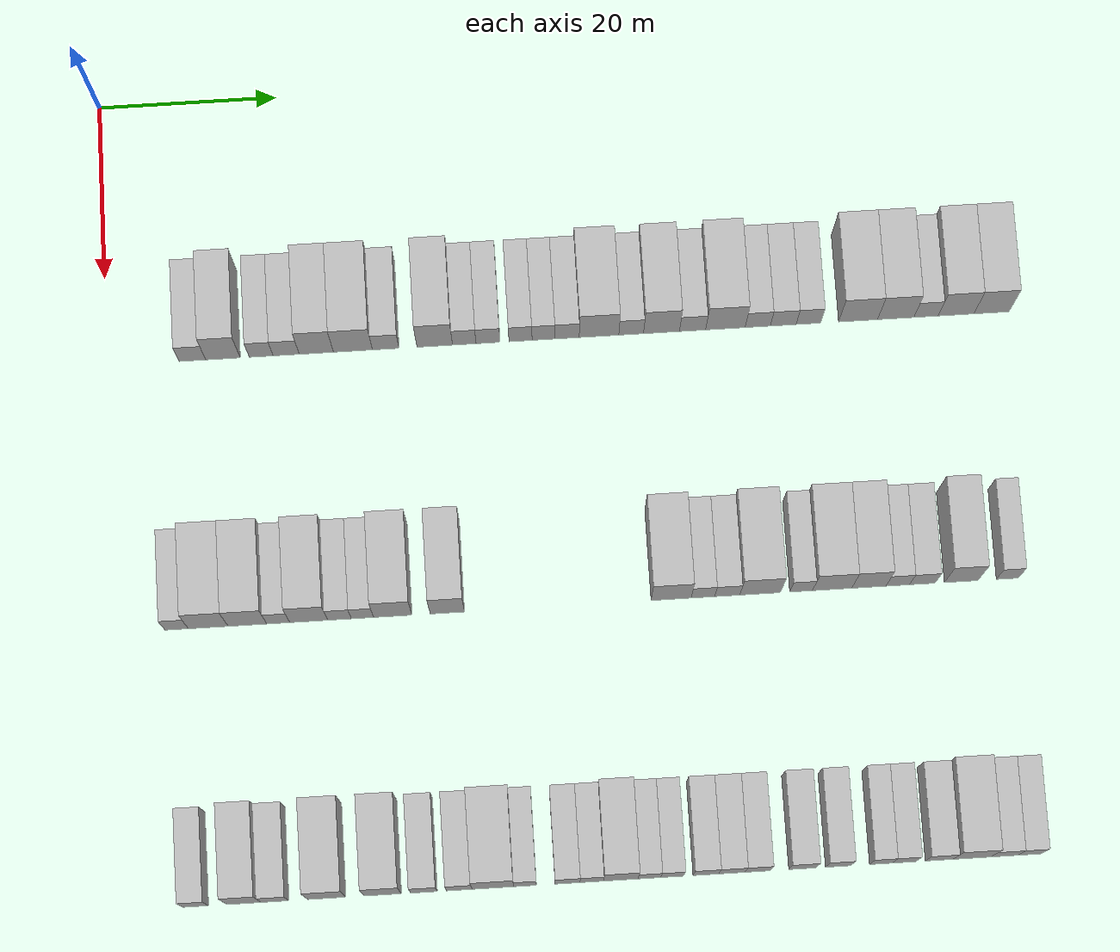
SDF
<sdf version="1.6">
 <world name="default">
  <model name="building_70">
   <static>1</static>
   <pose>25.0000 9.4305 0 0.000000 0.000000 0.000000</pose>
   <link name="link">
    <pose>0 0 3.00 0 0 0</pose>
    <collision name="collision"><geometry><box><size>10.0000 2.9530 6.0000</size></box></geometry></collision>
    <visual name="visual">
     <cast_shadows>0</cast_shadows>
     <geometry><box><size>10.0000 2.9530 6.0000</size></box></geometry>
     <material>
      <script>
       <uri>model://HANNAS_wall/materials/scripts</uri>
       <uri>model://HANNAS_wall/materials/textures</uri>
       <name>vrc/HANNAS_wall</name>
      </script>
     </material>
    </visual>
   </link>
  </model>
  <model name="building_71">
   <static>1</static>
   <pose>25.0000 12.8158 0 0.000000 0.000000 0.000000</pose>
   <link name="link">
    <pose>0 0 4.50 0 0 0</pose>
    <collision name="collision"><geometry><box><size>10.0000 3.8176 9.0000</size></box></geometry></collision>
    <visual name="visual">
     <cast_shadows>0</cast_shadows>
     <geometry><box><size>10.0000 3.8176 9.0000</size></box></geometry>
     <material>
      <script>
       <uri>model://HANNAS_wall/materials/scripts</uri>
       <uri>model://HANNAS_wall/materials/textures</uri>
       <name>vrc/HANNAS_wall</name>
      </script>
     </material>
    </visual>
   </link>
  </model>
  <model name="building_72">
   <static>1</static>
   <pose>25.0000 17.0457 0 0.000000 0.000000 0.000000</pose>
   <link name="link">
    <pose>0 0 3.00 0 0 0</pose>
    <collision name="collision"><geometry><box><size>10.0000 2.6424 6.0000</size></box></geometry></collision>
    <visual name="visual">
     <cast_shadows>0</cast_shadows>
     <geometry><box><size>10.0000 2.6424 6.0000</size></box></geometry>
     <material>
      <script>
       <uri>model://HANNAS_wall/materials/scripts</uri>
       <uri>model://HANNAS_wall/materials/textures</uri>
       <name>vrc/HANNAS_wall</name>
      </script>
     </material>
    </visual>
   </link>
  </model>
  <model name="building_73">
   <static>1</static>
   <pose>25.0000 19.8131 0 0.000000 0.000000 0.000000</pose>
   <link name="link">
    <pose>0 0 3.00 0 0 0</pose>
    <collision name="collision"><geometry><box><size>10.0000 2.8925 6.0000</size></box></geometry></collision>
    <visual name="visual">
     <cast_shadows>0</cast_shadows>
     <geometry><box><size>10.0000 2.8925 6.0000</size></box></geometry>
     <material>
      <script>
       <uri>model://HANNAS_wall/materials/scripts</uri>
       <uri>model://HANNAS_wall/materials/textures</uri>
       <name>vrc/HANNAS_wall</name>
      </script>
     </material>
    </visual>
   </link>
  </model>
  <model name="building_74">
   <static>1</static>
   <pose>25.0000 23.1577 0 0.000000 0.000000 0.000000</pose>
   <link name="link">
    <pose>0 0 4.50 0 0 0</pose>
    <collision name="collision"><geometry><box><size>10.0000 3.7967 9.0000</size></box></geometry></collision>
    <visual name="visual">
     <cast_shadows>0</cast_shadows>
     <geometry><box><size>10.0000 3.7967 9.0000</size></box></geometry>
     <material>
      <script>
       <uri>model://HANNAS_wall/materials/scripts</uri>
       <uri>model://HANNAS_wall/materials/textures</uri>
       <name>vrc/HANNAS_wall</name>
      </script>
     </material>
    </visual>
   </link>
  </model>
  <model name="building_75">
   <static>1</static>
   <pose>25.0000 27.2226 0 0.000000 0.000000 0.000000</pose>
   <link name="link">
    <pose>0 0 4.50 0 0 0</pose>
    <collision name="collision"><geometry><box><size>10.0000 4.3331 9.0000</size></box></geometry></collision>
    <visual name="visual">
     <cast_shadows>0</cast_shadows>
     <geometry><box><size>10.0000 4.3331 9.0000</size></box></geometry>
     <material>
      <script>
       <uri>model://HANNAS_wall/materials/scripts</uri>
       <uri>model://HANNAS_wall/materials/textures</uri>
       <name>vrc/HANNAS_wall</name>
      </script>
     </material>
    </visual>
   </link>
  </model>
  <model name="building_76">
   <static>1</static>
   <pose>25.0000 30.8655 0 0.000000 0.000000 0.000000</pose>
   <link name="link">
    <pose>0 0 3.00 0 0 0</pose>
    <collision name="collision"><geometry><box><size>10.0000 2.9528 6.0000</size></box></geometry></collision>
    <visual name="visual">
     <cast_shadows>0</cast_shadows>
     <geometry><box><size>10.0000 2.9528 6.0000</size></box></geometry>
     <material>
      <script>
       <uri>model://HANNAS_wall/materials/scripts</uri>
       <uri>model://HANNAS_wall/materials/textures</uri>
       <name>vrc/HANNAS_wall</name>
      </script>
     </material>
    </visual>
   </link>
  </model>
  <model name="building_77">
   <static>1</static>
   <pose>25.0000 36.3133 0 0.000000 0.000000 0.000000</pose>
   <link name="link">
    <pose>0 0 4.50 0 0 0</pose>
    <collision name="collision"><geometry><box><size>10.0000 3.9428 9.0000</size></box></geometry></collision>
    <visual name="visual">
     <cast_shadows>0</cast_shadows>
     <geometry><box><size>10.0000 3.9428 9.0000</size></box></geometry>
     <material>
      <script>
       <uri>model://HANNAS_wall/materials/scripts</uri>
       <uri>model://HANNAS_wall/materials/textures</uri>
       <name>vrc/HANNAS_wall</name>
      </script>
     </material>
    </visual>
   </link>
  </model>
  <model name="building_78">
   <static>1</static>
   <pose>25.0000 39.5945 0 0.000000 0.000000 0.000000</pose>
   <link name="link">
    <pose>0 0 3.00 0 0 0</pose>
    <collision name="collision"><geometry><box><size>10.0000 2.6196 6.0000</size></box></geometry></collision>
    <visual name="visual">
     <cast_shadows>0</cast_shadows>
     <geometry><box><size>10.0000 2.6196 6.0000</size></box></geometry>
     <material>
      <script>
       <uri>model://HANNAS_wall/materials/scripts</uri>
       <uri>model://HANNAS_wall/materials/textures</uri>
       <name>vrc/HANNAS_wall</name>
      </script>
     </material>
    </visual>
   </link>
  </model>
  <model name="building_79">
   <static>1</static>
   <pose>25.0000 42.2353 0 0.000000 0.000000 0.000000</pose>
   <link name="link">
    <pose>0 0 3.00 0 0 0</pose>
    <collision name="collision"><geometry><box><size>10.0000 2.6621 6.0000</size></box></geometry></collision>
    <visual name="visual">
     <cast_shadows>0</cast_shadows>
     <geometry><box><size>10.0000 2.6621 6.0000</size></box></geometry>
     <material>
      <script>
       <uri>model://HANNAS_wall/materials/scripts</uri>
       <uri>model://HANNAS_wall/materials/textures</uri>
       <name>vrc/HANNAS_wall</name>
      </script>
     </material>
    </visual>
   </link>
  </model>
  <model name="building_80">
   <static>1</static>
   <pose>25.0000 45.8490 0 0.000000 0.000000 0.000000</pose>
   <link name="link">
    <pose>0 0 3.00 0 0 0</pose>
    <collision name="collision"><geometry><box><size>10.0000 2.5652 6.0000</size></box></geometry></collision>
    <visual name="visual">
     <cast_shadows>0</cast_shadows>
     <geometry><box><size>10.0000 2.5652 6.0000</size></box></geometry>
     <material>
      <script>
       <uri>model://HANNAS_wall/materials/scripts</uri>
       <uri>model://HANNAS_wall/materials/textures</uri>
       <name>vrc/HANNAS_wall</name>
      </script>
     </material>
    </visual>
   </link>
  </model>
  <model name="building_81">
   <static>1</static>
   <pose>25.0000 48.3998 0 0.000000 0.000000 0.000000</pose>
   <link name="link">
    <pose>0 0 3.00 0 0 0</pose>
    <collision name="collision"><geometry><box><size>10.0000 2.5362 6.0000</size></box></geometry></collision>
    <visual name="visual">
     <cast_shadows>0</cast_shadows>
     <geometry><box><size>10.0000 2.5362 6.0000</size></box></geometry>
     <material>
      <script>
       <uri>model://HANNAS_wall/materials/scripts</uri>
       <uri>model://HANNAS_wall/materials/textures</uri>
       <name>vrc/HANNAS_wall</name>
      </script>
     </material>
    </visual>
   </link>
  </model>
  <model name="building_82">
   <static>1</static>
   <pose>25.0000 51.0193 0 0.000000 0.000000 0.000000</pose>
   <link name="link">
    <pose>0 0 3.00 0 0 0</pose>
    <collision name="collision"><geometry><box><size>10.0000 2.7028 6.0000</size></box></geometry></collision>
    <visual name="visual">
     <cast_shadows>0</cast_shadows>
     <geometry><box><size>10.0000 2.7028 6.0000</size></box></geometry>
     <material>
      <script>
       <uri>model://HANNAS_wall/materials/scripts</uri>
       <uri>model://HANNAS_wall/materials/textures</uri>
       <name>vrc/HANNAS_wall</name>
      </script>
     </material>
    </visual>
   </link>
  </model>
  <model name="building_83">
   <static>1</static>
   <pose>25.0000 54.5735 0 0.000000 0.000000 0.000000</pose>
   <link name="link">
    <pose>0 0 4.50 0 0 0</pose>
    <collision name="collision"><geometry><box><size>10.0000 4.4055 9.0000</size></box></geometry></collision>
    <visual name="visual">
     <cast_shadows>0</cast_shadows>
     <geometry><box><size>10.0000 4.4055 9.0000</size></box></geometry>
     <material>
      <script>
       <uri>model://HANNAS_wall/materials/scripts</uri>
       <uri>model://HANNAS_wall/materials/textures</uri>
       <name>vrc/HANNAS_wall</name>
      </script>
     </material>
    </visual>
   </link>
  </model>
  <model name="building_84">
   <static>1</static>
   <pose>25.0000 58.1525 0 0.000000 0.000000 0.000000</pose>
   <link name="link">
    <pose>0 0 3.00 0 0 0</pose>
    <collision name="collision"><geometry><box><size>10.0000 2.7524 6.0000</size></box></geometry></collision>
    <visual name="visual">
     <cast_shadows>0</cast_shadows>
     <geometry><box><size>10.0000 2.7524 6.0000</size></box></geometry>
     <material>
      <script>
       <uri>model://HANNAS_wall/materials/scripts</uri>
       <uri>model://HANNAS_wall/materials/textures</uri>
       <name>vrc/HANNAS_wall</name>
      </script>
     </material>
    </visual>
   </link>
  </model>
  <model name="building_85">
   <static>1</static>
   <pose>25.0000 61.5253 0 0.000000 0.000000 0.000000</pose>
   <link name="link">
    <pose>0 0 4.50 0 0 0</pose>
    <collision name="collision"><geometry><box><size>10.0000 3.9933 9.0000</size></box></geometry></collision>
    <visual name="visual">
     <cast_shadows>0</cast_shadows>
     <geometry><box><size>10.0000 3.9933 9.0000</size></box></geometry>
     <material>
      <script>
       <uri>model://HANNAS_wall/materials/scripts</uri>
       <uri>model://HANNAS_wall/materials/textures</uri>
       <name>vrc/HANNAS_wall</name>
      </script>
     </material>
    </visual>
   </link>
  </model>
  <model name="building_86">
   <static>1</static>
   <pose>25.0000 64.9810 0 0.000000 0.000000 0.000000</pose>
   <link name="link">
    <pose>0 0 3.00 0 0 0</pose>
    <collision name="collision"><geometry><box><size>10.0000 2.9181 6.0000</size></box></geometry></collision>
    <visual name="visual">
     <cast_shadows>0</cast_shadows>
     <geometry><box><size>10.0000 2.9181 6.0000</size></box></geometry>
     <material>
      <script>
       <uri>model://HANNAS_wall/materials/scripts</uri>
       <uri>model://HANNAS_wall/materials/textures</uri>
       <name>vrc/HANNAS_wall</name>
      </script>
     </material>
    </visual>
   </link>
  </model>
  <model name="building_87">
   <static>1</static>
   <pose>25.0000 68.6356 0 0.000000 0.000000 0.000000</pose>
   <link name="link">
    <pose>0 0 4.50 0 0 0</pose>
    <collision name="collision"><geometry><box><size>10.0000 4.3910 9.0000</size></box></geometry></collision>
    <visual name="visual">
     <cast_shadows>0</cast_shadows>
     <geometry><box><size>10.0000 4.3910 9.0000</size></box></geometry>
     <material>
      <script>
       <uri>model://HANNAS_wall/materials/scripts</uri>
       <uri>model://HANNAS_wall/materials/textures</uri>
       <name>vrc/HANNAS_wall</name>
      </script>
     </material>
    </visual>
   </link>
  </model>
  <model name="building_88">
   <static>1</static>
   <pose>25.0000 72.2378 0 0.000000 0.000000 0.000000</pose>
   <link name="link">
    <pose>0 0 3.00 0 0 0</pose>
    <collision name="collision"><geometry><box><size>10.0000 2.8133 6.0000</size></box></geometry></collision>
    <visual name="visual">
     <cast_shadows>0</cast_shadows>
     <geometry><box><size>10.0000 2.8133 6.0000</size></box></geometry>
     <material>
      <script>
       <uri>model://HANNAS_wall/materials/scripts</uri>
       <uri>model://HANNAS_wall/materials/textures</uri>
       <name>vrc/HANNAS_wall</name>
      </script>
     </material>
    </visual>
   </link>
  </model>
  <model name="building_89">
   <static>1</static>
   <pose>25.0000 75.0821 0 0.000000 0.000000 0.000000</pose>
   <link name="link">
    <pose>0 0 3.00 0 0 0</pose>
    <collision name="collision"><geometry><box><size>10.0000 2.8753 6.0000</size></box></geometry></collision>
    <visual name="visual">
     <cast_shadows>0</cast_shadows>
     <geometry><box><size>10.0000 2.8753 6.0000</size></box></geometry>
     <material>
      <script>
       <uri>model://HANNAS_wall/materials/scripts</uri>
       <uri>model://HANNAS_wall/materials/textures</uri>
       <name>vrc/HANNAS_wall</name>
      </script>
     </material>
    </visual>
   </link>
  </model>
  <model name="building_90">
   <static>1</static>
   <pose>25.0000 77.8897 0 0.000000 0.000000 0.000000</pose>
   <link name="link">
    <pose>0 0 3.00 0 0 0</pose>
    <collision name="collision"><geometry><box><size>10.0000 2.7399 6.0000</size></box></geometry></collision>
    <visual name="visual">
     <cast_shadows>0</cast_shadows>
     <geometry><box><size>10.0000 2.7399 6.0000</size></box></geometry>
     <material>
      <script>
       <uri>model://HANNAS_wall/materials/scripts</uri>
       <uri>model://HANNAS_wall/materials/textures</uri>
       <name>vrc/HANNAS_wall</name>
      </script>
     </material>
    </visual>
   </link>
  </model>
  <model name="building_91">
   <static>1</static>
   <pose>25.0000 83.4280 0 0.000000 0.000000 0.000000</pose>
   <link name="link">
    <pose>0 0 4.50 0 0 0</pose>
    <collision name="collision"><geometry><box><size>10.0000 4.3368 9.0000</size></box></geometry></collision>
    <visual name="visual">
     <cast_shadows>0</cast_shadows>
     <geometry><box><size>10.0000 4.3368 9.0000</size></box></geometry>
     <material>
      <script>
       <uri>model://HANNAS_wall/materials/scripts</uri>
       <uri>model://HANNAS_wall/materials/textures</uri>
       <name>vrc/HANNAS_wall</name>
      </script>
     </material>
    </visual>
   </link>
  </model>
  <model name="building_92">
   <static>1</static>
   <pose>25.0000 87.6310 0 0.000000 0.000000 0.000000</pose>
   <link name="link">
    <pose>0 0 4.50 0 0 0</pose>
    <collision name="collision"><geometry><box><size>10.0000 4.0693 9.0000</size></box></geometry></collision>
    <visual name="visual">
     <cast_shadows>0</cast_shadows>
     <geometry><box><size>10.0000 4.0693 9.0000</size></box></geometry>
     <material>
      <script>
       <uri>model://HANNAS_wall/materials/scripts</uri>
       <uri>model://HANNAS_wall/materials/textures</uri>
       <name>vrc/HANNAS_wall</name>
      </script>
     </material>
    </visual>
   </link>
  </model>
  <model name="building_93">
   <static>1</static>
   <pose>25.0000 91.0185 0 0.000000 0.000000 0.000000</pose>
   <link name="link">
    <pose>0 0 3.00 0 0 0</pose>
    <collision name="collision"><geometry><box><size>10.0000 2.7056 6.0000</size></box></geometry></collision>
    <visual name="visual">
     <cast_shadows>0</cast_shadows>
     <geometry><box><size>10.0000 2.7056 6.0000</size></box></geometry>
     <material>
      <script>
       <uri>model://HANNAS_wall/materials/scripts</uri>
       <uri>model://HANNAS_wall/materials/textures</uri>
       <name>vrc/HANNAS_wall</name>
      </script>
     </material>
    </visual>
   </link>
  </model>
  <model name="building_94">
   <static>1</static>
   <pose>25.0000 94.3641 0 0.000000 0.000000 0.000000</pose>
   <link name="link">
    <pose>0 0 4.50 0 0 0</pose>
    <collision name="collision"><geometry><box><size>10.0000 3.9855 9.0000</size></box></geometry></collision>
    <visual name="visual">
     <cast_shadows>0</cast_shadows>
     <geometry><box><size>10.0000 3.9855 9.0000</size></box></geometry>
     <material>
      <script>
       <uri>model://HANNAS_wall/materials/scripts</uri>
       <uri>model://HANNAS_wall/materials/textures</uri>
       <name>vrc/HANNAS_wall</name>
      </script>
     </material>
    </visual>
   </link>
  </model>
  <model name="building_95">
   <static>1</static>
   <pose>25.0000 98.3267 0 0.000000 0.000000 0.000000</pose>
   <link name="link">
    <pose>0 0 4.50 0 0 0</pose>
    <collision name="collision"><geometry><box><size>10.0000 3.9398 9.0000</size></box></geometry></collision>
    <visual name="visual">
     <cast_shadows>0</cast_shadows>
     <geometry><box><size>10.0000 3.9398 9.0000</size></box></geometry>
     <material>
      <script>
       <uri>model://HANNAS_wall/materials/scripts</uri>
       <uri>model://HANNAS_wall/materials/textures</uri>
       <name>vrc/HANNAS_wall</name>
      </script>
     </material>
    </visual>
   </link>
  </model>
  <model name="building_211">
   <static>1</static>
   <pose>55.0000 6.6166 0 0.000000 0.000000 0.000000</pose>
   <link name="link">
    <pose>0 0 3.00 0 0 0</pose>
    <collision name="collision"><geometry><box><size>10.0000 2.5538 6.0000</size></box></geometry></collision>
    <visual name="visual">
     <cast_shadows>0</cast_shadows>
     <geometry><box><size>10.0000 2.5538 6.0000</size></box></geometry>
     <material>
      <script>
       <uri>model://HANNAS_wall/materials/scripts</uri>
       <uri>model://HANNAS_wall/materials/textures</uri>
       <name>vrc/HANNAS_wall</name>
      </script>
     </material>
    </visual>
   </link>
  </model>
  <model name="building_212">
   <static>1</static>
   <pose>55.0000 10.0508 0 0.000000 0.000000 0.000000</pose>
   <link name="link">
    <pose>0 0 4.50 0 0 0</pose>
    <collision name="collision"><geometry><box><size>10.0000 4.3146 9.0000</size></box></geometry></collision>
    <visual name="visual">
     <cast_shadows>0</cast_shadows>
     <geometry><box><size>10.0000 4.3146 9.0000</size></box></geometry>
     <material>
      <script>
       <uri>model://HANNAS_wall/materials/scripts</uri>
       <uri>model://HANNAS_wall/materials/textures</uri>
       <name>vrc/HANNAS_wall</name>
      </script>
     </material>
    </visual>
   </link>
  </model>
  <model name="building_213">
   <static>1</static>
   <pose>55.0000 14.3141 0 0.000000 0.000000 0.000000</pose>
   <link name="link">
    <pose>0 0 4.50 0 0 0</pose>
    <collision name="collision"><geometry><box><size>10.0000 4.2118 9.0000</size></box></geometry></collision>
    <visual name="visual">
     <cast_shadows>0</cast_shadows>
     <geometry><box><size>10.0000 4.2118 9.0000</size></box></geometry>
     <material>
      <script>
       <uri>model://HANNAS_wall/materials/scripts</uri>
       <uri>model://HANNAS_wall/materials/textures</uri>
       <name>vrc/HANNAS_wall</name>
      </script>
     </material>
    </visual>
   </link>
  </model>
  <model name="building_214">
   <static>1</static>
   <pose>55.0000 17.6703 0 0.000000 0.000000 0.000000</pose>
   <link name="link">
    <pose>0 0 3.00 0 0 0</pose>
    <collision name="collision"><geometry><box><size>10.0000 2.5007 6.0000</size></box></geometry></collision>
    <visual name="visual">
     <cast_shadows>0</cast_shadows>
     <geometry><box><size>10.0000 2.5007 6.0000</size></box></geometry>
     <material>
      <script>
       <uri>model://HANNAS_wall/materials/scripts</uri>
       <uri>model://HANNAS_wall/materials/textures</uri>
       <name>vrc/HANNAS_wall</name>
      </script>
     </material>
    </visual>
   </link>
  </model>
  <model name="building_215">
   <static>1</static>
   <pose>55.0000 20.9884 0 0.000000 0.000000 0.000000</pose>
   <link name="link">
    <pose>0 0 4.50 0 0 0</pose>
    <collision name="collision"><geometry><box><size>10.0000 4.1355 9.0000</size></box></geometry></collision>
    <visual name="visual">
     <cast_shadows>0</cast_shadows>
     <geometry><box><size>10.0000 4.1355 9.0000</size></box></geometry>
     <material>
      <script>
       <uri>model://HANNAS_wall/materials/scripts</uri>
       <uri>model://HANNAS_wall/materials/textures</uri>
       <name>vrc/HANNAS_wall</name>
      </script>
     </material>
    </visual>
   </link>
  </model>
  <model name="building_216">
   <static>1</static>
   <pose>55.0000 24.3451 0 0.000000 0.000000 0.000000</pose>
   <link name="link">
    <pose>0 0 3.00 0 0 0</pose>
    <collision name="collision"><geometry><box><size>10.0000 2.5780 6.0000</size></box></geometry></collision>
    <visual name="visual">
     <cast_shadows>0</cast_shadows>
     <geometry><box><size>10.0000 2.5780 6.0000</size></box></geometry>
     <material>
      <script>
       <uri>model://HANNAS_wall/materials/scripts</uri>
       <uri>model://HANNAS_wall/materials/textures</uri>
       <name>vrc/HANNAS_wall</name>
      </script>
     </material>
    </visual>
   </link>
  </model>
  <model name="building_217">
   <static>1</static>
   <pose>55.0000 26.8447 0 0.000000 0.000000 0.000000</pose>
   <link name="link">
    <pose>0 0 3.00 0 0 0</pose>
    <collision name="collision"><geometry><box><size>10.0000 2.4212 6.0000</size></box></geometry></collision>
    <visual name="visual">
     <cast_shadows>0</cast_shadows>
     <geometry><box><size>10.0000 2.4212 6.0000</size></box></geometry>
     <material>
      <script>
       <uri>model://HANNAS_wall/materials/scripts</uri>
       <uri>model://HANNAS_wall/materials/textures</uri>
       <name>vrc/HANNAS_wall</name>
      </script>
     </material>
    </visual>
   </link>
  </model>
  <model name="building_218">
   <static>1</static>
   <pose>55.0000 30.1408 0 0.000000 0.000000 0.000000</pose>
   <link name="link">
    <pose>0 0 4.50 0 0 0</pose>
    <collision name="collision"><geometry><box><size>10.0000 4.1709 9.0000</size></box></geometry></collision>
    <visual name="visual">
     <cast_shadows>0</cast_shadows>
     <geometry><box><size>10.0000 4.1709 9.0000</size></box></geometry>
     <material>
      <script>
       <uri>model://HANNAS_wall/materials/scripts</uri>
       <uri>model://HANNAS_wall/materials/textures</uri>
       <name>vrc/HANNAS_wall</name>
      </script>
     </material>
    </visual>
   </link>
  </model>
  <model name="building_219">
   <static>1</static>
   <pose>55.0000 36.0871 0 0.000000 0.000000 0.000000</pose>
   <link name="link">
    <pose>0 0 4.50 0 0 0</pose>
    <collision name="collision"><geometry><box><size>10.0000 3.7217 9.0000</size></box></geometry></collision>
    <visual name="visual">
     <cast_shadows>0</cast_shadows>
     <geometry><box><size>10.0000 3.7217 9.0000</size></box></geometry>
     <material>
      <script>
       <uri>model://HANNAS_wall/materials/scripts</uri>
       <uri>model://HANNAS_wall/materials/textures</uri>
       <name>vrc/HANNAS_wall</name>
      </script>
     </material>
    </visual>
   </link>
  </model>
  <model name="building_220">
   <static>1</static>
   <pose>55.0000 60.5043 0 0.000000 0.000000 0.000000</pose>
   <link name="link">
    <pose>0 0 4.50 0 0 0</pose>
    <collision name="collision"><geometry><box><size>10.0000 4.3709 9.0000</size></box></geometry></collision>
    <visual name="visual">
     <cast_shadows>0</cast_shadows>
     <geometry><box><size>10.0000 4.3709 9.0000</size></box></geometry>
     <material>
      <script>
       <uri>model://HANNAS_wall/materials/scripts</uri>
       <uri>model://HANNAS_wall/materials/textures</uri>
       <name>vrc/HANNAS_wall</name>
      </script>
     </material>
    </visual>
   </link>
  </model>
  <model name="building_221">
   <static>1</static>
   <pose>55.0000 63.9783 0 0.000000 0.000000 0.000000</pose>
   <link name="link">
    <pose>0 0 3.00 0 0 0</pose>
    <collision name="collision"><geometry><box><size>10.0000 2.5770 6.0000</size></box></geometry></collision>
    <visual name="visual">
     <cast_shadows>0</cast_shadows>
     <geometry><box><size>10.0000 2.5770 6.0000</size></box></geometry>
     <material>
      <script>
       <uri>model://HANNAS_wall/materials/scripts</uri>
       <uri>model://HANNAS_wall/materials/textures</uri>
       <name>vrc/HANNAS_wall</name>
      </script>
     </material>
    </visual>
   </link>
  </model>
  <model name="building_222">
   <static>1</static>
   <pose>55.0000 66.6374 0 0.000000 0.000000 0.000000</pose>
   <link name="link">
    <pose>0 0 3.00 0 0 0</pose>
    <collision name="collision"><geometry><box><size>10.0000 2.7414 6.0000</size></box></geometry></collision>
    <visual name="visual">
     <cast_shadows>0</cast_shadows>
     <geometry><box><size>10.0000 2.7414 6.0000</size></box></geometry>
     <material>
      <script>
       <uri>model://HANNAS_wall/materials/scripts</uri>
       <uri>model://HANNAS_wall/materials/textures</uri>
       <name>vrc/HANNAS_wall</name>
      </script>
     </material>
    </visual>
   </link>
  </model>
  <model name="building_223">
   <static>1</static>
   <pose>55.0000 70.2415 0 0.000000 0.000000 0.000000</pose>
   <link name="link">
    <pose>0 0 4.50 0 0 0</pose>
    <collision name="collision"><geometry><box><size>10.0000 4.4666 9.0000</size></box></geometry></collision>
    <visual name="visual">
     <cast_shadows>0</cast_shadows>
     <geometry><box><size>10.0000 4.4666 9.0000</size></box></geometry>
     <material>
      <script>
       <uri>model://HANNAS_wall/materials/scripts</uri>
       <uri>model://HANNAS_wall/materials/textures</uri>
       <name>vrc/HANNAS_wall</name>
      </script>
     </material>
    </visual>
   </link>
  </model>
  <model name="building_224">
   <static>1</static>
   <pose>55.0000 74.7213 0 0.000000 0.000000 0.000000</pose>
   <link name="link">
    <pose>0 0 3.00 0 0 0</pose>
    <collision name="collision"><geometry><box><size>10.0000 2.4931 6.0000</size></box></geometry></collision>
    <visual name="visual">
     <cast_shadows>0</cast_shadows>
     <geometry><box><size>10.0000 2.4931 6.0000</size></box></geometry>
     <material>
      <script>
       <uri>model://HANNAS_wall/materials/scripts</uri>
       <uri>model://HANNAS_wall/materials/textures</uri>
       <name>vrc/HANNAS_wall</name>
      </script>
     </material>
    </visual>
   </link>
  </model>
  <model name="building_225">
   <static>1</static>
   <pose>55.0000 78.1178 0 0.000000 0.000000 0.000000</pose>
   <link name="link">
    <pose>0 0 4.50 0 0 0</pose>
    <collision name="collision"><geometry><box><size>10.0000 4.2999 9.0000</size></box></geometry></collision>
    <visual name="visual">
     <cast_shadows>0</cast_shadows>
     <geometry><box><size>10.0000 4.2999 9.0000</size></box></geometry>
     <material>
      <script>
       <uri>model://HANNAS_wall/materials/scripts</uri>
       <uri>model://HANNAS_wall/materials/textures</uri>
       <name>vrc/HANNAS_wall</name>
      </script>
     </material>
    </visual>
   </link>
  </model>
  <model name="building_226">
   <static>1</static>
   <pose>55.0000 82.1363 0 0.000000 0.000000 0.000000</pose>
   <link name="link">
    <pose>0 0 4.50 0 0 0</pose>
    <collision name="collision"><geometry><box><size>10.0000 3.7371 9.0000</size></box></geometry></collision>
    <visual name="visual">
     <cast_shadows>0</cast_shadows>
     <geometry><box><size>10.0000 3.7371 9.0000</size></box></geometry>
     <material>
      <script>
       <uri>model://HANNAS_wall/materials/scripts</uri>
       <uri>model://HANNAS_wall/materials/textures</uri>
       <name>vrc/HANNAS_wall</name>
      </script>
     </material>
    </visual>
   </link>
  </model>
  <model name="building_227">
   <static>1</static>
   <pose>55.0000 85.2986 0 0.000000 0.000000 0.000000</pose>
   <link name="link">
    <pose>0 0 3.00 0 0 0</pose>
    <collision name="collision"><geometry><box><size>10.0000 2.5876 6.0000</size></box></geometry></collision>
    <visual name="visual">
     <cast_shadows>0</cast_shadows>
     <geometry><box><size>10.0000 2.5876 6.0000</size></box></geometry>
     <material>
      <script>
       <uri>model://HANNAS_wall/materials/scripts</uri>
       <uri>model://HANNAS_wall/materials/textures</uri>
       <name>vrc/HANNAS_wall</name>
      </script>
     </material>
    </visual>
   </link>
  </model>
  <model name="building_228">
   <static>1</static>
   <pose>55.0000 88.0008 0 0.000000 0.000000 0.000000</pose>
   <link name="link">
    <pose>0 0 3.00 0 0 0</pose>
    <collision name="collision"><geometry><box><size>10.0000 2.8167 6.0000</size></box></geometry></collision>
    <visual name="visual">
     <cast_shadows>0</cast_shadows>
     <geometry><box><size>10.0000 2.8167 6.0000</size></box></geometry>
     <material>
      <script>
       <uri>model://HANNAS_wall/materials/scripts</uri>
       <uri>model://HANNAS_wall/materials/textures</uri>
       <name>vrc/HANNAS_wall</name>
      </script>
     </material>
    </visual>
   </link>
  </model>
  <model name="building_229">
   <static>1</static>
   <pose>55.0000 92.2539 0 0.000000 0.000000 0.000000</pose>
   <link name="link">
    <pose>0 0 4.50 0 0 0</pose>
    <collision name="collision"><geometry><box><size>10.0000 3.6894 9.0000</size></box></geometry></collision>
    <visual name="visual">
     <cast_shadows>0</cast_shadows>
     <geometry><box><size>10.0000 3.6894 9.0000</size></box></geometry>
     <material>
      <script>
       <uri>model://HANNAS_wall/materials/scripts</uri>
       <uri>model://HANNAS_wall/materials/textures</uri>
       <name>vrc/HANNAS_wall</name>
      </script>
     </material>
    </visual>
   </link>
  </model>
  <model name="building_230">
   <static>1</static>
   <pose>55.0000 97.3153 0 0.000000 0.000000 0.000000</pose>
   <link name="link">
    <pose>0 0 3.00 0 0 0</pose>
    <collision name="collision"><geometry><box><size>10.0000 2.4334 6.0000</size></box></geometry></collision>
    <visual name="visual">
     <cast_shadows>0</cast_shadows>
     <geometry><box><size>10.0000 2.4334 6.0000</size></box></geometry>
     <material>
      <script>
       <uri>model://HANNAS_wall/materials/scripts</uri>
       <uri>model://HANNAS_wall/materials/textures</uri>
       <name>vrc/HANNAS_wall</name>
      </script>
     </material>
    </visual>
   </link>
  </model>
  <model name="building_351">
   <static>1</static>
   <pose>85.0000 7.5666 0 0.000000 0.000000 0.000000</pose>
   <link name="link">
    <pose>0 0 3.00 0 0 0</pose>
    <collision name="collision"><geometry><box><size>10.0000 2.7239 6.0000</size></box></geometry></collision>
    <visual name="visual">
     <cast_shadows>0</cast_shadows>
     <geometry><box><size>10.0000 2.7239 6.0000</size></box></geometry>
     <material>
      <script>
       <uri>model://HANNAS_wall/materials/scripts</uri>
       <uri>model://HANNAS_wall/materials/textures</uri>
       <name>vrc/HANNAS_wall</name>
      </script>
     </material>
    </visual>
   </link>
  </model>
  <model name="building_352">
   <static>1</static>
   <pose>85.0000 12.7469 0 0.000000 0.000000 0.000000</pose>
   <link name="link">
    <pose>0 0 4.50 0 0 0</pose>
    <collision name="collision"><geometry><box><size>10.0000 3.6365 9.0000</size></box></geometry></collision>
    <visual name="visual">
     <cast_shadows>0</cast_shadows>
     <geometry><box><size>10.0000 3.6365 9.0000</size></box></geometry>
     <material>
      <script>
       <uri>model://HANNAS_wall/materials/scripts</uri>
       <uri>model://HANNAS_wall/materials/textures</uri>
       <name>vrc/HANNAS_wall</name>
      </script>
     </material>
    </visual>
   </link>
  </model>
  <model name="building_353">
   <static>1</static>
   <pose>85.0000 16.0434 0 0.000000 0.000000 0.000000</pose>
   <link name="link">
    <pose>0 0 3.00 0 0 0</pose>
    <collision name="collision"><geometry><box><size>10.0000 2.9565 6.0000</size></box></geometry></collision>
    <visual name="visual">
     <cast_shadows>0</cast_shadows>
     <geometry><box><size>10.0000 2.9565 6.0000</size></box></geometry>
     <material>
      <script>
       <uri>model://HANNAS_wall/materials/scripts</uri>
       <uri>model://HANNAS_wall/materials/textures</uri>
       <name>vrc/HANNAS_wall</name>
      </script>
     </material>
    </visual>
   </link>
  </model>
  <model name="building_354">
   <static>1</static>
   <pose>85.0000 21.5649 0 0.000000 0.000000 0.000000</pose>
   <link name="link">
    <pose>0 0 4.50 0 0 0</pose>
    <collision name="collision"><geometry><box><size>10.0000 4.0865 9.0000</size></box></geometry></collision>
    <visual name="visual">
     <cast_shadows>0</cast_shadows>
     <geometry><box><size>10.0000 4.0865 9.0000</size></box></geometry>
     <material>
      <script>
       <uri>model://HANNAS_wall/materials/scripts</uri>
       <uri>model://HANNAS_wall/materials/textures</uri>
       <name>vrc/HANNAS_wall</name>
      </script>
     </material>
    </visual>
   </link>
  </model>
  <model name="building_355">
   <static>1</static>
   <pose>85.0000 27.5794 0 0.000000 0.000000 0.000000</pose>
   <link name="link">
    <pose>0 0 4.50 0 0 0</pose>
    <collision name="collision"><geometry><box><size>10.0000 3.9424 9.0000</size></box></geometry></collision>
    <visual name="visual">
     <cast_shadows>0</cast_shadows>
     <geometry><box><size>10.0000 3.9424 9.0000</size></box></geometry>
     <material>
      <script>
       <uri>model://HANNAS_wall/materials/scripts</uri>
       <uri>model://HANNAS_wall/materials/textures</uri>
       <name>vrc/HANNAS_wall</name>
      </script>
     </material>
    </visual>
   </link>
  </model>
  <model name="building_356">
   <static>1</static>
   <pose>85.0000 31.9675 0 0.000000 0.000000 0.000000</pose>
   <link name="link">
    <pose>0 0 3.00 0 0 0</pose>
    <collision name="collision"><geometry><box><size>10.0000 2.8338 6.0000</size></box></geometry></collision>
    <visual name="visual">
     <cast_shadows>0</cast_shadows>
     <geometry><box><size>10.0000 2.8338 6.0000</size></box></geometry>
     <material>
      <script>
       <uri>model://HANNAS_wall/materials/scripts</uri>
       <uri>model://HANNAS_wall/materials/textures</uri>
       <name>vrc/HANNAS_wall</name>
      </script>
     </material>
    </visual>
   </link>
  </model>
  <model name="building_357">
   <static>1</static>
   <pose>85.0000 35.7506 0 0.000000 0.000000 0.000000</pose>
   <link name="link">
    <pose>0 0 3.00 0 0 0</pose>
    <collision name="collision"><geometry><box><size>10.0000 2.7325 6.0000</size></box></geometry></collision>
    <visual name="visual">
     <cast_shadows>0</cast_shadows>
     <geometry><box><size>10.0000 2.7325 6.0000</size></box></geometry>
     <material>
      <script>
       <uri>model://HANNAS_wall/materials/scripts</uri>
       <uri>model://HANNAS_wall/materials/textures</uri>
       <name>vrc/HANNAS_wall</name>
      </script>
     </material>
    </visual>
   </link>
  </model>
  <model name="building_358">
   <static>1</static>
   <pose>85.0000 39.3468 0 0.000000 0.000000 0.000000</pose>
   <link name="link">
    <pose>0 0 4.50 0 0 0</pose>
    <collision name="collision"><geometry><box><size>10.0000 4.4599 9.0000</size></box></geometry></collision>
    <visual name="visual">
     <cast_shadows>0</cast_shadows>
     <geometry><box><size>10.0000 4.4599 9.0000</size></box></geometry>
     <material>
      <script>
       <uri>model://HANNAS_wall/materials/scripts</uri>
       <uri>model://HANNAS_wall/materials/textures</uri>
       <name>vrc/HANNAS_wall</name>
      </script>
     </material>
    </visual>
   </link>
  </model>
  <model name="building_359">
   <static>1</static>
   <pose>85.0000 42.7840 0 0.000000 0.000000 0.000000</pose>
   <link name="link">
    <pose>0 0 3.00 0 0 0</pose>
    <collision name="collision"><geometry><box><size>10.0000 2.4145 6.0000</size></box></geometry></collision>
    <visual name="visual">
     <cast_shadows>0</cast_shadows>
     <geometry><box><size>10.0000 2.4145 6.0000</size></box></geometry>
     <material>
      <script>
       <uri>model://HANNAS_wall/materials/scripts</uri>
       <uri>model://HANNAS_wall/materials/textures</uri>
       <name>vrc/HANNAS_wall</name>
      </script>
     </material>
    </visual>
   </link>
  </model>
  <model name="building_360">
   <static>1</static>
   <pose>85.0000 47.3223 0 0.000000 0.000000 0.000000</pose>
   <link name="link">
    <pose>0 0 3.00 0 0 0</pose>
    <collision name="collision"><geometry><box><size>10.0000 2.6622 6.0000</size></box></geometry></collision>
    <visual name="visual">
     <cast_shadows>0</cast_shadows>
     <geometry><box><size>10.0000 2.6622 6.0000</size></box></geometry>
     <material>
      <script>
       <uri>model://HANNAS_wall/materials/scripts</uri>
       <uri>model://HANNAS_wall/materials/textures</uri>
       <name>vrc/HANNAS_wall</name>
      </script>
     </material>
    </visual>
   </link>
  </model>
  <model name="building_361">
   <static>1</static>
   <pose>85.0000 49.9132 0 0.000000 0.000000 0.000000</pose>
   <link name="link">
    <pose>0 0 3.00 0 0 0</pose>
    <collision name="collision"><geometry><box><size>10.0000 2.5196 6.0000</size></box></geometry></collision>
    <visual name="visual">
     <cast_shadows>0</cast_shadows>
     <geometry><box><size>10.0000 2.5196 6.0000</size></box></geometry>
     <material>
      <script>
       <uri>model://HANNAS_wall/materials/scripts</uri>
       <uri>model://HANNAS_wall/materials/textures</uri>
       <name>vrc/HANNAS_wall</name>
      </script>
     </material>
    </visual>
   </link>
  </model>
  <model name="building_362">
   <static>1</static>
   <pose>85.0000 53.0166 0 0.000000 0.000000 0.000000</pose>
   <link name="link">
    <pose>0 0 4.50 0 0 0</pose>
    <collision name="collision"><geometry><box><size>10.0000 3.6872 9.0000</size></box></geometry></collision>
    <visual name="visual">
     <cast_shadows>0</cast_shadows>
     <geometry><box><size>10.0000 3.6872 9.0000</size></box></geometry>
     <material>
      <script>
       <uri>model://HANNAS_wall/materials/scripts</uri>
       <uri>model://HANNAS_wall/materials/textures</uri>
       <name>vrc/HANNAS_wall</name>
      </script>
     </material>
    </visual>
   </link>
  </model>
  <model name="building_363">
   <static>1</static>
   <pose>85.0000 56.0909 0 0.000000 0.000000 0.000000</pose>
   <link name="link">
    <pose>0 0 3.00 0 0 0</pose>
    <collision name="collision"><geometry><box><size>10.0000 2.4612 6.0000</size></box></geometry></collision>
    <visual name="visual">
     <cast_shadows>0</cast_shadows>
     <geometry><box><size>10.0000 2.4612 6.0000</size></box></geometry>
     <material>
      <script>
       <uri>model://HANNAS_wall/materials/scripts</uri>
       <uri>model://HANNAS_wall/materials/textures</uri>
       <name>vrc/HANNAS_wall</name>
      </script>
     </material>
    </visual>
   </link>
  </model>
  <model name="building_364">
   <static>1</static>
   <pose>85.0000 58.5457 0 0.000000 0.000000 0.000000</pose>
   <link name="link">
    <pose>0 0 3.00 0 0 0</pose>
    <collision name="collision"><geometry><box><size>10.0000 2.4484 6.0000</size></box></geometry></collision>
    <visual name="visual">
     <cast_shadows>0</cast_shadows>
     <geometry><box><size>10.0000 2.4484 6.0000</size></box></geometry>
     <material>
      <script>
       <uri>model://HANNAS_wall/materials/scripts</uri>
       <uri>model://HANNAS_wall/materials/textures</uri>
       <name>vrc/HANNAS_wall</name>
      </script>
     </material>
    </visual>
   </link>
  </model>
  <model name="building_365">
   <static>1</static>
   <pose>85.0000 62.1430 0 0.000000 0.000000 0.000000</pose>
   <link name="link">
    <pose>0 0 3.00 0 0 0</pose>
    <collision name="collision"><geometry><box><size>10.0000 2.7462 6.0000</size></box></geometry></collision>
    <visual name="visual">
     <cast_shadows>0</cast_shadows>
     <geometry><box><size>10.0000 2.7462 6.0000</size></box></geometry>
     <material>
      <script>
       <uri>model://HANNAS_wall/materials/scripts</uri>
       <uri>model://HANNAS_wall/materials/textures</uri>
       <name>vrc/HANNAS_wall</name>
      </script>
     </material>
    </visual>
   </link>
  </model>
  <model name="building_366">
   <static>1</static>
   <pose>85.0000 64.9300 0 0.000000 0.000000 0.000000</pose>
   <link name="link">
    <pose>0 0 3.00 0 0 0</pose>
    <collision name="collision"><geometry><box><size>10.0000 2.8278 6.0000</size></box></geometry></collision>
    <visual name="visual">
     <cast_shadows>0</cast_shadows>
     <geometry><box><size>10.0000 2.8278 6.0000</size></box></geometry>
     <material>
      <script>
       <uri>model://HANNAS_wall/materials/scripts</uri>
       <uri>model://HANNAS_wall/materials/textures</uri>
       <name>vrc/HANNAS_wall</name>
      </script>
     </material>
    </visual>
   </link>
  </model>
  <model name="building_367">
   <static>1</static>
   <pose>85.0000 67.6909 0 0.000000 0.000000 0.000000</pose>
   <link name="link">
    <pose>0 0 3.00 0 0 0</pose>
    <collision name="collision"><geometry><box><size>10.0000 2.6940 6.0000</size></box></geometry></collision>
    <visual name="visual">
     <cast_shadows>0</cast_shadows>
     <geometry><box><size>10.0000 2.6940 6.0000</size></box></geometry>
     <material>
      <script>
       <uri>model://HANNAS_wall/materials/scripts</uri>
       <uri>model://HANNAS_wall/materials/textures</uri>
       <name>vrc/HANNAS_wall</name>
      </script>
     </material>
    </visual>
   </link>
  </model>
  <model name="building_368">
   <static>1</static>
   <pose>85.0000 72.5059 0 0.000000 0.000000 0.000000</pose>
   <link name="link">
    <pose>0 0 3.00 0 0 0</pose>
    <collision name="collision"><geometry><box><size>10.0000 2.9360 6.0000</size></box></geometry></collision>
    <visual name="visual">
     <cast_shadows>0</cast_shadows>
     <geometry><box><size>10.0000 2.9360 6.0000</size></box></geometry>
     <material>
      <script>
       <uri>model://HANNAS_wall/materials/scripts</uri>
       <uri>model://HANNAS_wall/materials/textures</uri>
       <name>vrc/HANNAS_wall</name>
      </script>
     </material>
    </visual>
   </link>
  </model>
  <model name="building_369">
   <static>1</static>
   <pose>85.0000 76.3413 0 0.000000 0.000000 0.000000</pose>
   <link name="link">
    <pose>0 0 3.00 0 0 0</pose>
    <collision name="collision"><geometry><box><size>10.0000 2.7348 6.0000</size></box></geometry></collision>
    <visual name="visual">
     <cast_shadows>0</cast_shadows>
     <geometry><box><size>10.0000 2.7348 6.0000</size></box></geometry>
     <material>
      <script>
       <uri>model://HANNAS_wall/materials/scripts</uri>
       <uri>model://HANNAS_wall/materials/textures</uri>
       <name>vrc/HANNAS_wall</name>
      </script>
     </material>
    </visual>
   </link>
  </model>
  <model name="building_370">
   <static>1</static>
   <pose>85.0000 80.9222 0 0.000000 0.000000 0.000000</pose>
   <link name="link">
    <pose>0 0 3.00 0 0 0</pose>
    <collision name="collision"><geometry><box><size>10.0000 2.4269 6.0000</size></box></geometry></collision>
    <visual name="visual">
     <cast_shadows>0</cast_shadows>
     <geometry><box><size>10.0000 2.4269 6.0000</size></box></geometry>
     <material>
      <script>
       <uri>model://HANNAS_wall/materials/scripts</uri>
       <uri>model://HANNAS_wall/materials/textures</uri>
       <name>vrc/HANNAS_wall</name>
      </script>
     </material>
    </visual>
   </link>
  </model>
  <model name="building_371">
   <static>1</static>
   <pose>85.0000 83.4181 0 0.000000 0.000000 0.000000</pose>
   <link name="link">
    <pose>0 0 3.00 0 0 0</pose>
    <collision name="collision"><geometry><box><size>10.0000 2.5649 6.0000</size></box></geometry></collision>
    <visual name="visual">
     <cast_shadows>0</cast_shadows>
     <geometry><box><size>10.0000 2.5649 6.0000</size></box></geometry>
     <material>
      <script>
       <uri>model://HANNAS_wall/materials/scripts</uri>
       <uri>model://HANNAS_wall/materials/textures</uri>
       <name>vrc/HANNAS_wall</name>
      </script>
     </material>
    </visual>
   </link>
  </model>
  <model name="building_372">
   <static>1</static>
   <pose>85.0000 87.1896 0 0.000000 0.000000 0.000000</pose>
   <link name="link">
    <pose>0 0 3.00 0 0 0</pose>
    <collision name="collision"><geometry><box><size>10.0000 2.9782 6.0000</size></box></geometry></collision>
    <visual name="visual">
     <cast_shadows>0</cast_shadows>
     <geometry><box><size>10.0000 2.9782 6.0000</size></box></geometry>
     <material>
      <script>
       <uri>model://HANNAS_wall/materials/scripts</uri>
       <uri>model://HANNAS_wall/materials/textures</uri>
       <name>vrc/HANNAS_wall</name>
      </script>
     </material>
    </visual>
   </link>
  </model>
  <model name="building_373">
   <static>1</static>
   <pose>85.0000 90.7052 0 0.000000 0.000000 0.000000</pose>
   <link name="link">
    <pose>0 0 4.50 0 0 0</pose>
    <collision name="collision"><geometry><box><size>10.0000 4.0530 9.0000</size></box></geometry></collision>
    <visual name="visual">
     <cast_shadows>0</cast_shadows>
     <geometry><box><size>10.0000 4.0530 9.0000</size></box></geometry>
     <material>
      <script>
       <uri>model://HANNAS_wall/materials/scripts</uri>
       <uri>model://HANNAS_wall/materials/textures</uri>
       <name>vrc/HANNAS_wall</name>
      </script>
     </material>
    </visual>
   </link>
  </model>
  <model name="building_374">
   <static>1</static>
   <pose>85.0000 94.1783 0 0.000000 0.000000 0.000000</pose>
   <link name="link">
    <pose>0 0 3.00 0 0 0</pose>
    <collision name="collision"><geometry><box><size>10.0000 2.8931 6.0000</size></box></geometry></collision>
    <visual name="visual">
     <cast_shadows>0</cast_shadows>
     <geometry><box><size>10.0000 2.8931 6.0000</size></box></geometry>
     <material>
      <script>
       <uri>model://HANNAS_wall/materials/scripts</uri>
       <uri>model://HANNAS_wall/materials/textures</uri>
       <name>vrc/HANNAS_wall</name>
      </script>
     </material>
    </visual>
   </link>
  </model>
  <model name="building_375">
   <static>1</static>
   <pose>85.0000 96.8979 0 0.000000 0.000000 0.000000</pose>
   <link name="link">
    <pose>0 0 3.00 0 0 0</pose>
    <collision name="collision"><geometry><box><size>10.0000 2.5461 6.0000</size></box></geometry></collision>
    <visual name="visual">
     <cast_shadows>0</cast_shadows>
     <geometry><box><size>10.0000 2.5461 6.0000</size></box></geometry>
     <material>
      <script>
       <uri>model://HANNAS_wall/materials/scripts</uri>
       <uri>model://HANNAS_wall/materials/textures</uri>
       <name>vrc/HANNAS_wall</name>
      </script>
     </material>
    </visual>
   </link>
  </model>
 </world>
</sdf>
